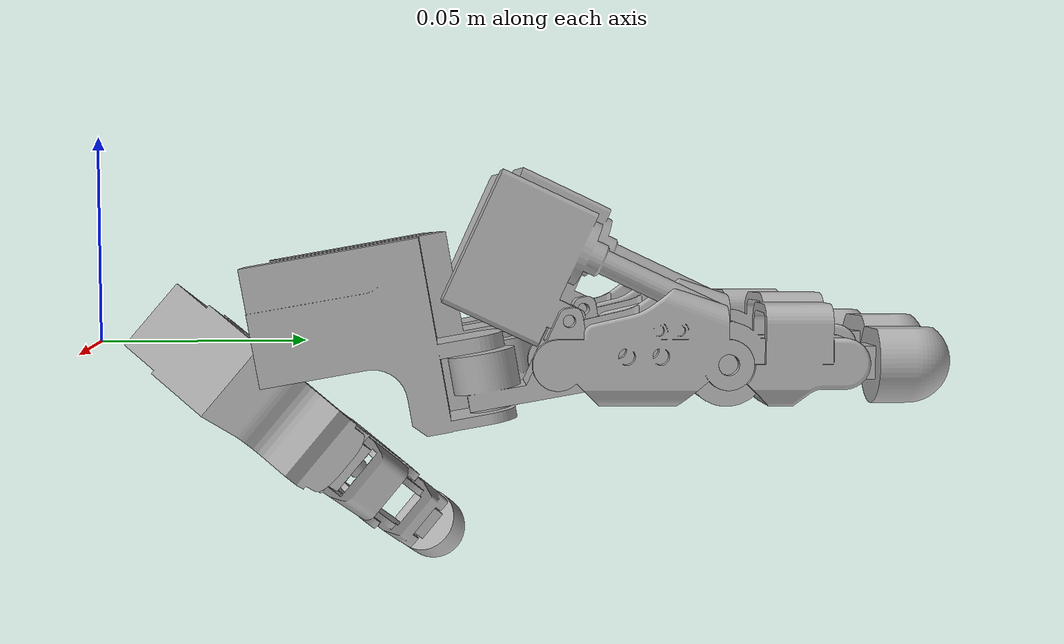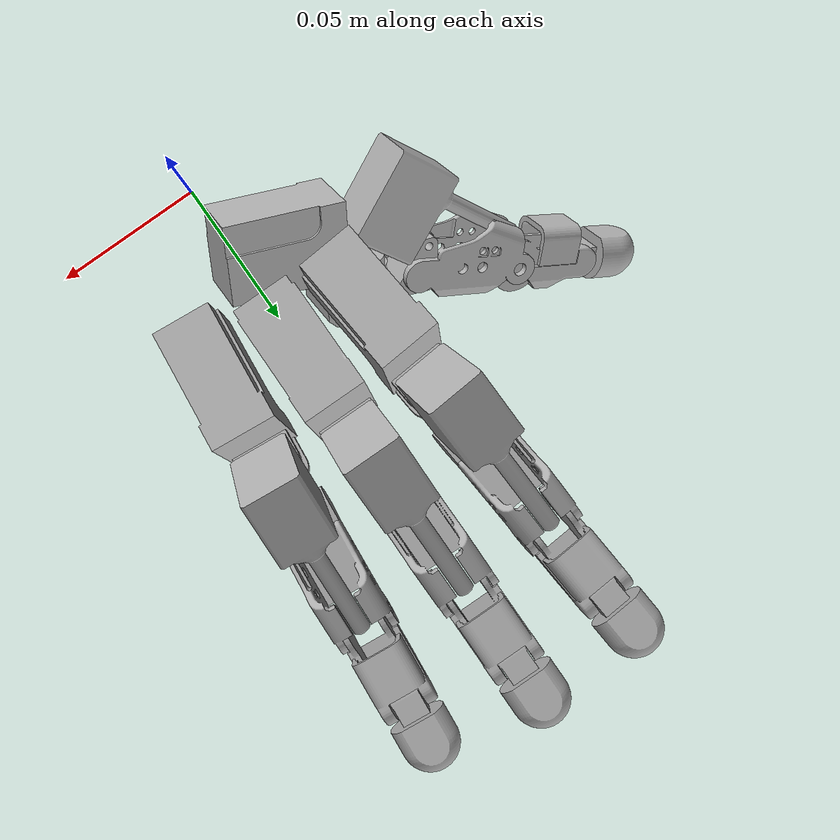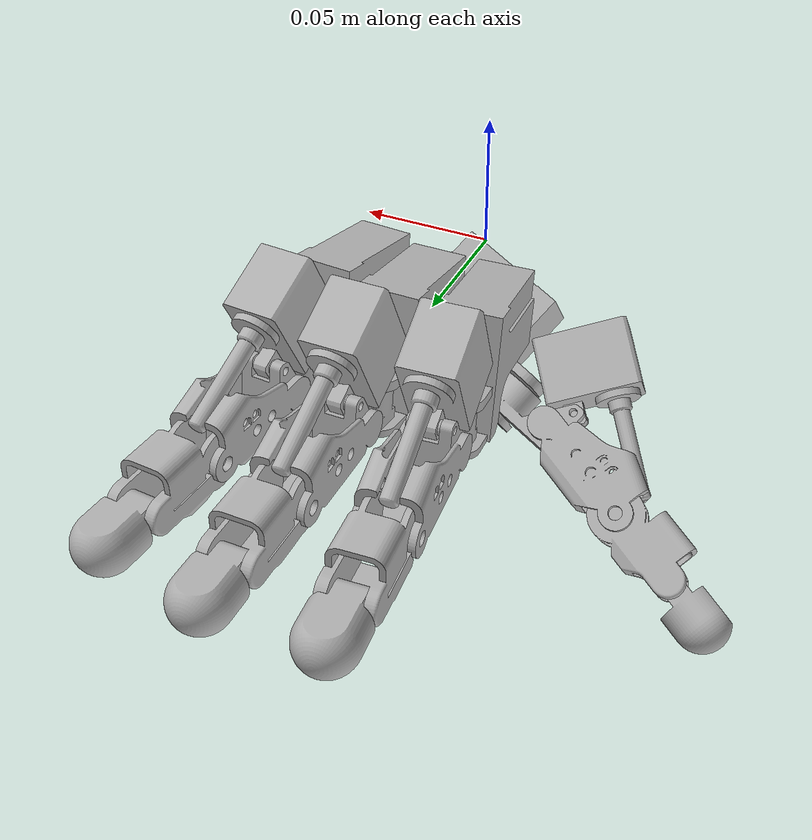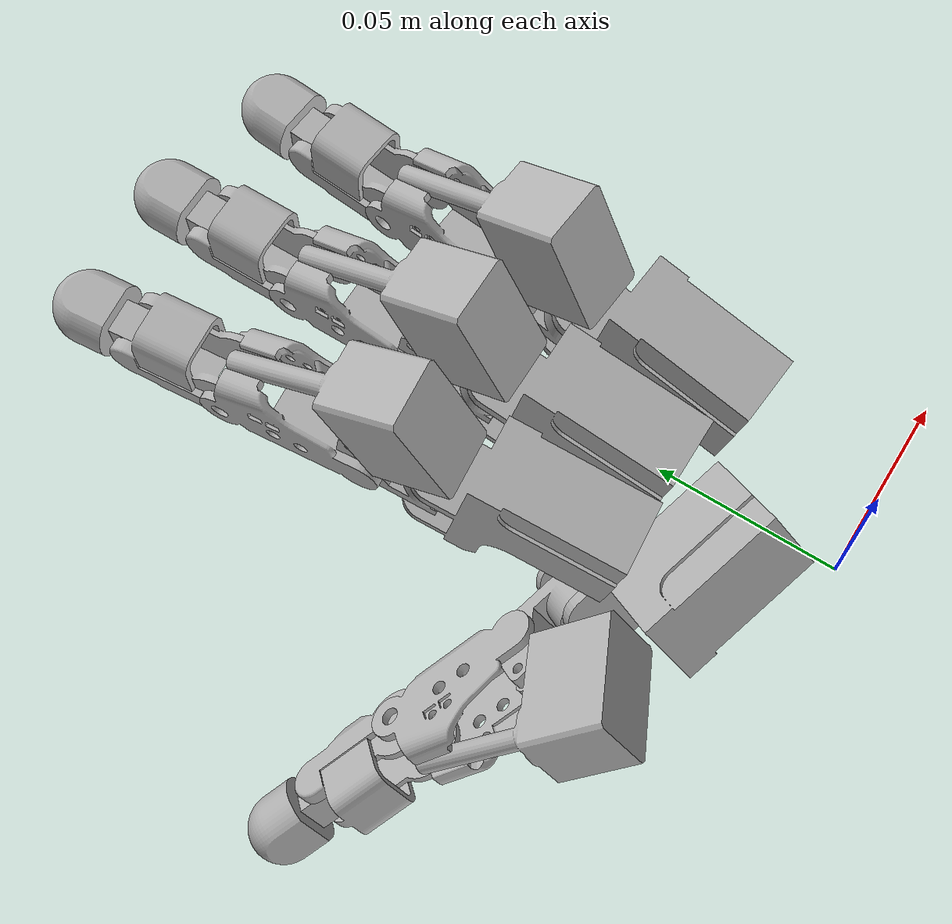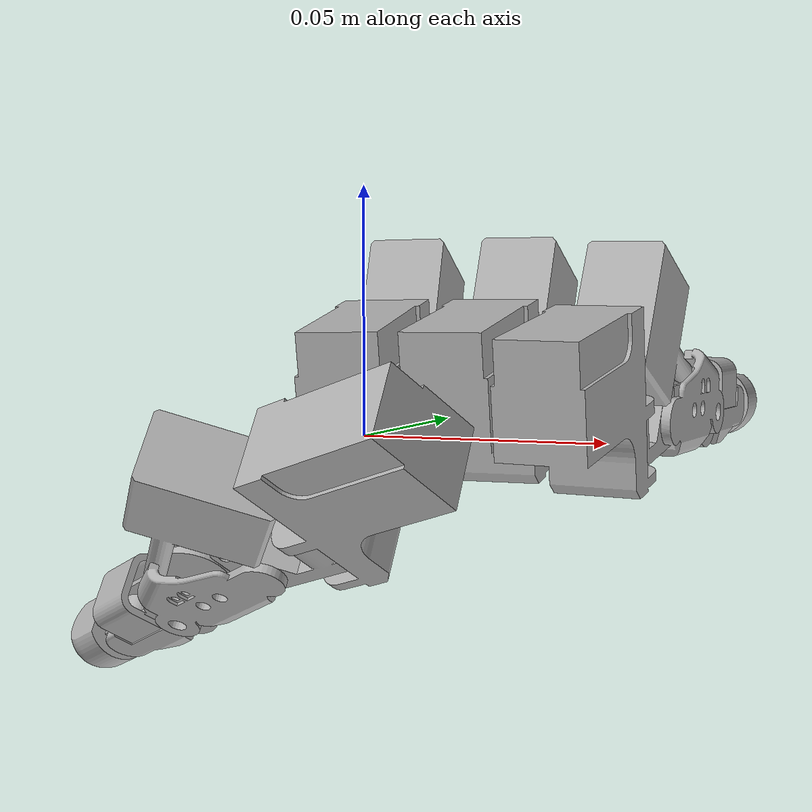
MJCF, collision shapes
<mujoco model="hand_urdf">
    <include file="simulation_scene.xml"/>

	<default class="position">
			<position ctrllimited="true" forcelimited="false" forcerange="-0.01 0.01" ctrlrange="-3 3" kp="1.0"></position>
    </default>
    <asset>
        <mesh name="base_link" file="base_link.stl" scale="0.001 0.001 0.001" />
        <mesh name="mcp2_1" file="mcp2_1.stl" scale="0.001 0.001 0.001" />
        <mesh name="pp2_1" file="pp2_1.stl" scale="0.001 0.001 0.001" />
        <mesh name="mp2_1" file="mp2_1.stl" scale="0.001 0.001 0.001" />
        <mesh name="dp2_1" file="dp2_1.stl" scale="0.001 0.001 0.001" />
        <mesh name="meta2_1" file="meta2_1.stl" scale="0.001 0.001 0.001" />
        <mesh name="meta1_1" file="meta1_1.stl" scale="0.001 0.001 0.001" />
        <mesh name="mcp1_1" file="mcp1_1.stl" scale="0.001 0.001 0.001" />
        <mesh name="pp1_1" file="pp1_1.stl" scale="0.001 0.001 0.001" />
        <mesh name="mp1_1" file="mp1_1.stl" scale="0.001 0.001 0.001" />
        <mesh name="dp1_1" file="dp1_1.stl" scale="0.001 0.001 0.001" />
        <mesh name="meta3_1" file="meta3_1.stl" scale="0.001 0.001 0.001" />
        <mesh name="mcp3_1" file="mcp3_1.stl" scale="0.001 0.001 0.001" />
        <mesh name="pp3_1" file="pp3_1.stl" scale="0.001 0.001 0.001" />
        <mesh name="mp3_1" file="mp3_1.stl" scale="0.001 0.001 0.001" />
        <mesh name="dp3_1" file="dp3_1.stl" scale="0.001 0.001 0.001" />
        <mesh name="meta4_1" file="meta4_1.stl" scale="0.001 0.001 0.001" />
        <mesh name="mcp4_1" file="mcp4_1.stl" scale="0.001 0.001 0.001" />
        <mesh name="pp4_1" file="pp4_1.stl" scale="0.001 0.001 0.001" />
        <mesh name="mp4_1" file="mp4_1.stl" scale="0.001 0.001 0.001" />
        <mesh name="dp4_1" file="dp4_1.stl" scale="0.001 0.001 0.001" />
        <mesh name="act1_1" file="act1_1.stl" scale="0.001 0.001 0.001" />
        <mesh name="act2_1" file="act2_1.stl" scale="0.001 0.001 0.001" />
        <mesh name="act3_1" file="act3_1.stl" scale="0.001 0.001 0.001" />
        <mesh name="act4_1" file="act4_1.stl" scale="0.001 0.001 0.001" />

         <!--texture type="skybox" builtin="gradient" width="128" height="128" rgb1="1 1 1" rgb2="0 0 0"/-->
        <texture type="skybox" builtin="gradient" width="128" height="128" rgb1="0.4 0.6 0.8" rgb2="0 0 0"/>
        <texture name="texgeom" type="cube" builtin="flat" mark="cross" width="128" height="128" rgb1="0.6 0.6 0.6" rgb2="0.6 0.6 0.6" markrgb="1 1 1"/>
        <texture name="texplane" type="2d" builtin="checker" rgb1=".4 .4 .4" rgb2=".6 .6 .6" width="512" height="512"/>
        <material name='geom' texture="texgeom" texuniform="true"/>
        <material name='MatPlane' reflectance='0.3' texture="texplane" texrepeat="1 1" texuniform="true"/>
        <material name='MatPlane2' reflectance='0.3' />

    </asset>
    <worldbody>
        <light directional="true" diffuse=".8 .8 .8" pos="0 0 10" dir="0 0 -10"/>
        <light directional="true" diffuse=".5 .5 .5" pos="10 0 0" dir="-10 0 0"/>

        <body name="virtual_link" pos="0 0 -1">
            <inertial pos="0.07809 0 0.03985" mass="0.19525" fullinertia="0.101833182 0.072400662 0.144478157 -0.000070812 -0.003831096 0.000079272" />
            <joint name="virtual_joint" type="free"/>
        </body>

        <geom type="mesh" rgba="0.7 0.7 0.7 1" mesh="base_link" contype="0" conaffinity="0"/>
        <geom type="mesh" rgba="0.7 0.7 0.7 1" mesh="meta2_1" contype="1" conaffinity="1"/>
        <geom type="mesh" rgba="0.7 0.7 0.7 1" mesh="meta1_1" contype="1" conaffinity="1"/>
        <geom type="mesh" rgba="0.7 0.7 0.7 1" mesh="meta3_1" contype="1" conaffinity="1"/>
        <geom type="mesh" rgba="0.7 0.7 0.7 1" mesh="meta4_1" contype="1" conaffinity="1"/>
        <body name="base_link">
            <inertial pos="0.00012921570168839317 0.017296271435922838 0.004513375763540404" mass="0.038866249408726565" diaginertia="1.6e-05 2.3e-05 2.4e-05"/>
            <body name="mcp2_1" pos="-0.029022 0.100047 -0.013279">
                <inertial pos="-0.00085722 0.00842528 0.00865166" quat="0.707107 0.707107 0 0" mass="0.0150899" diaginertia="2e-06 2e-06 1e-06" />
                <joint name="aa2" pos="0 0 0" axis="0 -0.173648 0.984808" limited="true" range="-3.14 3.14" class="ksy_joint"/>
                <geom pos="0.029022 -0.100047 0.013279" type="mesh" rgba="0.7 0.7 0.7 1" mesh="mcp2_1" contype="2" conaffinity="2"/>
                <body name="pp2_1" pos="-0.008953 0.01468 0.010509">
                    <inertial pos="0.00558963 0.0222004 0.00172825" quat="0.707107 0.707107 0 0" mass="0.0125687" diaginertia="3e-06 3e-06 2e-06" />
                    <joint name="mcp2" pos="0 0 0" axis="-0.996195 -0.085832 -0.015134" limited="true" range="-3.14 3.14" class="ksy_joint" />
                    <geom pos="0.037975 -0.114727 0.00277" type="mesh" rgba="0.7 0.7 0.7 1" mesh="pp2_1"/>
                    <body name="mp2_1" pos="-0.003931 0.039809 -3.3e-05">
                        <inertial pos="0.00676453 0.0144678 0.00126187" quat="0.707107 0.707107 0 0" mass="0.0129842" diaginertia="2e-06 2e-06 1e-06" />
                        <joint name="pip2" pos="0 0 0" axis="-0.996195 -0.085832 -0.015134"  limited="true" range="-3.14 3.14" class="ksy_joint"/>
                        <geom pos="0.041906 -0.154536 0.002803" type="mesh" rgba="0.7 0.7 0.7 1" mesh="mp2_1" />
                        <body name="dp2_1" pos="8.7e-05 0.028112 1.9e-05">
                            <inertial pos="0.00429285 0.0142959 -0.000246767" mass="0.0151738" diaginertia="1e-06 1e-06 1e-06" />
                            <joint name="dip2" pos="0 0 0" axis="-0.996195 -0.085832 -0.015134" limited="true" range="-3.14 3.14" class="ksy_joint"/>
                            <geom pos="0.041819 -0.182648 0.002784" type="mesh" rgba="0.7 0.7 0.7 1" mesh="dp2_1" />
                        </body>
                    </body>
                </body>
                <body name="act2_1" pos="0.001613 0.018389 0.02081">
                    <inertial pos="-0.00292034 -0.00937475 0.0141296" quat="0.707107 0.707107 0 0" mass="0.050027" diaginertia="1e-05 8e-06 6e-06" />
                    <joint name="act2" pos="0 0 0" axis="-0.996195 -0.085832 -0.015134" limited="true" range="-3.14 3.14" class="ksy_joint" />
                    <geom pos="0.027409 -0.118436 -0.007531" type="mesh" rgba="0.7 0.7 0.7 1" mesh="act2_1" contype="4" conaffinity="4" />
                </body>
            </body>
            <body name="mcp1_1" pos="-0.029913 0.05726 -0.033338">
                <inertial pos="-0.0118924 -0.00197871 0.00110107" quat="0.5 0.5 0.5 0.5" mass="0.0150899" diaginertia="2e-06 2e-06 1e-06" />
                <joint name="aa1" pos="0 0 0" axis="-0.42367 -0.700574 0.574195" limited="true" range="-3.14 3.14" class="ksy_joint"/>
                <geom pos="0.029913 -0.05726 0.033338" type="mesh" rgba="0.7 0.7 0.7 1" mesh="mcp1_1" contype="2" conaffinity="2"/>
                <body name="pp1_1" pos="-0.018968 0.004511 0.005092">
                    <inertial pos="-0.0183518 0.00316656 -0.0134266" quat="0.5 0.5 0.5 0.5" mass="0.0125687" diaginertia="3e-06 3e-06 2e-06" />
                    <joint name="mcp1" pos="0 0 0" axis="0.037066 -0.646775 -0.76178" limited="true" range="-3.14 3.14" class="ksy_joint"/>
                    <geom pos="0.048881 -0.061771 0.028246" type="mesh" rgba="0.7 0.7 0.7 1" mesh="pp1_1"/>
                    <body name="mp1_1" pos="-0.032135 0.006716 -0.027613">
                        <inertial pos="-0.012269 0.0102303 0.00121932" quat="0.5 0.5 0.5 0.5" mass="0.0129842" diaginertia="2e-06 2e-06 1e-06" />
                        <joint name="pip1" pos="0 0 0" axis="0.037066 -0.646775 -0.76178" limited="true" range="-3.14 3.14" class="ksy_joint"/>
                        <geom pos="0.081016 -0.068487 0.055859" type="mesh" rgba="0.7 0.7 0.7 1" mesh="mp1_1" />
                        <body name="dp1_1" pos="-0.023397 0.020451 -0.00078">
                            <inertial pos="-0.0109583 0.00245434 -0.00983685" mass="0.0151738" diaginertia="1e-06 1e-06 1e-06" />
                            <joint name="dip1" pos="0 0 0" axis="0.037066 -0.646775 -0.76178" limited="true" range="-3.14 3.14" class="ksy_joint"/>
                            <geom pos="0.104413 -0.088938 0.056639" type="mesh" rgba="0.7 0.7 0.7 1" mesh="dp1_1" />
                        </body>
                    </body>
                </body>
                <body name="act1_1" pos="-0.026658 -0.007903 0.000818">
                    <inertial pos="-0.000833478 -0.010584 0.0135401" quat="0.433758 0.539223 -0.0208348 0.721567" mass="0.050027" diaginertia="1.05688e-05 7.63555e-06 4.7956e-06" />
                    <joint name="act1" pos="0 0 0" axis="0.037066 -0.646775 -0.76178" limited="true" range="-3.14 3.14" class="ksy_joint" />
                    <geom pos="0.056571 -0.049357 0.03252" type="mesh" rgba="0.7 0.7 0.7 1" mesh="act1_1" contype="4" conaffinity="4" />
                </body>
            </body>
            <body name="mcp3_1" pos="0.00045 0.101099 -0.013093">
                <inertial pos="3.79376e-07 0.00846239 0.0086577" quat="0.707107 0.707107 0 0" mass="0.0150899" diaginertia="2e-06 2e-06 1e-06" />
                <joint name="aa3" pos="0 0 0" axis="0 -0.173648 0.984808" limited="true" range="-3.14 3.14" class="ksy_joint"/>
                <geom pos="-0.00045 -0.101099 0.013093" type="mesh" rgba="0.7 0.7 0.7 1" mesh="mcp3_1" contype="2" conaffinity="2" />
                <body name="pp3_1" pos="0.0075 0.015388 0.010633">
                    <inertial pos="-0.00749962 0.0216372 0.00162929" quat="0.707107 0.707107 0 0" mass="0.0125687" diaginertia="3e-06 3e-06 2e-06" />
                    <joint name="mcp3" pos="0 0 0" axis="-1 0 0" limited="true" range="-3.14 3.14" class="ksy_joint"/>
                    <geom pos="-0.00795 -0.116487 0.00246" type="mesh" rgba="0.7 0.7 0.7 1" mesh="pp3_1"/>
                    <body name="mp3_1" pos="-0.0155 0.04 0">
                        <inertial pos="0.00800038 0.0138322 0.00115081" quat="0.707107 0.707107 0 0" mass="0.0129842" diaginertia="2e-06 2e-06 1e-06" />
                        <joint name="pip3" pos="0 0 0" axis="-1 0 0" limited="true" range="-3.14 3.14" class="ksy_joint"/>
                        <geom pos="0.00755 -0.156487 0.00246" type="mesh" rgba="0.7 0.7 0.7 1" mesh="mp3_1" />
                        <body name="dp3_1" pos="0.0135 0.028 0">
                            <inertial pos="-0.00549962 0.0138749 -0.000320751" mass="0.0151738" diaginertia="1e-06 1e-06 1e-06" />
                            <joint name="dip3" pos="0 0 0" axis="-1 0 0" limited="true" range="-3.14 3.14" class="ksy_joint"/>
                            <geom pos="-0.00595 -0.184487 0.00246" type="mesh" rgba="0.7 0.7 0.7 1" mesh="dp3_1" />
                        </body>
                    </body>
                </body>
                <body name="act3_1" pos="0.0035 0.01817 0.020771">
                    <inertial pos="-0.00349962 -0.00909928 0.0141781" quat="0.707107 0.707107 0 0" mass="0.050027" diaginertia="1e-05 8e-06 6e-06" />
                    <joint name="act3" pos="0 0 0" axis="-1 0 0" limited="true" range="-3.14 3.14" class="ksy_joint" />
                    <geom pos="-0.00395 -0.119269 -0.007678" type="mesh" rgba="0.7 0.7 0.7 1" mesh="act3_1" contype="4" conaffinity="4" />
                </body>
            </body>
            <body name="mcp4_1" pos="0.029803 0.092965 -0.014527">
                <inertial pos="0.000857375 0.00842528 0.00865091" quat="0.707107 0.707107 0 0" mass="0.0150899" diaginertia="2e-06 2e-06 1e-06" />
                <joint name="aa4" pos="0 0 0" axis="0 -0.173648 0.984808" limited="true" range="-3.14 3.14" class="ksy_joint"/>
                <geom pos="-0.029803 -0.092965 0.014527" type="mesh" rgba="0.7 0.7 0.7 1" mesh="mcp4_1" contype="2" conaffinity="2"/>
                <body name="pp4_1" pos="0.008953 0.01468 0.010508">
                    <inertial pos="-0.00558948 0.0222003 0.00172851" quat="0.707107 0.707107 0 0" mass="0.0125687" diaginertia="3e-06 3e-06 2e-06" />
                    <joint name="mcp4" pos="0 0 0" axis="-0.996195 0.085832 0.015134" limited="true" range="-3.14 3.14" class="ksy_joint"/>
                    <geom pos="-0.038756 -0.107645 0.004019" type="mesh" rgba="0.7 0.7 0.7 1" mesh="pp4_1" />
                    <body name="mp4_1" pos="-0.012008 0.041183 0.000209">
                        <inertial pos="0.00917463 0.0130938 0.00102012" quat="0.707107 0.707107 0 0" mass="0.0129842" diaginertia="2e-06 2e-06 1e-06" />
                        <joint name="pip4" pos="0 0 0" axis="-1 0 0" limited="true" range="-3.14 3.14" class="ksy_joint"/>
                        <geom pos="-0.026748 -0.148828 0.00381" type="mesh" rgba="0.7 0.7 0.7 1" mesh="mp4_1" />
                        <body name="dp4_1" pos="0.015852 0.026738 -0.000223">
                            <inertial pos="-0.00429269 0.0142959 -0.000246515" mass="0.0151738" diaginertia="1e-06 1e-06 1e-06" />
                            <joint name="dip4" pos="0 0 0" axis="-0.996195 0.085832 0.015134" limited="true" range="-3.14 3.14" class="ksy_joint"/>
                            <geom pos="-0.0426 -0.175566 0.004033" type="mesh" rgba="0.7 0.7 0.7 1" mesh="dp4_1" />
                        </body>
                    </body>
                </body>
                <body name="act4_1" pos="0.005361 0.017788 0.020703">
                    <inertial pos="-0.00405351 -0.00877375 0.0142359" quat="0.707107 0.707107 0 0" mass="0.050027" diaginertia="1e-05 8e-06 6e-06" />
                    <joint name="act4" pos="0 0 0" axis="-0.996195 0.085832 0.015134" limited="true" range="-3.14 3.14" class="ksy_joint" />
                    <geom pos="-0.035164 -0.110753 -0.006176" type="mesh" rgba="0.7 0.7 0.7 1" mesh="act4_1" contype="4" conaffinity="4" />
                </body>
            </body>
        </body>
    </worldbody>
    <actuator>

        <position name="aa2_Motor"  joint="aa2"  class="position"/>
        <position name="mcp2_Motor" joint="mcp2" class="position"/>
        <position name="pip2_Motor" joint="pip2" class="position"/>
        <position name="dip2_Motor" joint="dip2" class="position"/>
        <position name="aa1_Motor"  joint="aa1"  class="position"/>
        <position name="mcp1_Motor" joint="mcp1" class="position"/>
        <position name="pip1_Motor" joint="pip1" class="position"/>
        <position name="dip1_Motor" joint="dip1" class="position"/>
        <position name="aa3_Motor"  joint="aa3"  class="position"/>
        <position name="mcp3_Motor" joint="mcp3" class="position"/>
        <position name="pip3_Motor" joint="pip3" class="position"/>
        <position name="dip3_Motor" joint="dip3" class="position"/>
        <position name="aa4_Motor"  joint="aa4"  class="position"/>
        <position name="mcp4_Motor" joint="mcp4" class="position"/>
        <position name="pip4_Motor" joint="pip4" class="position"/>
        <position name="dip4_Motor" joint="dip4" class="position"/>
        <position name="act2_Motor" joint="act2" class="position"/>
        <position name="act1_Motor" joint="act1" class="position"/>
        <position name="act3_Motor" joint="act3" class="position"/>
        <position name="act4_Motor" joint="act4" class="position"/>
    </actuator>
</mujoco>

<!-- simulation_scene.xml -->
<mujoco model="scene">
    <option timestep='0.01' iterations="50" tolerance="1e-5" solver="Newton" jacobian="dense" cone="elliptic" noslip_iterations="30" noslip_tolerance="1e-5"/>
    <size njmax="8000" nconmax="4000"/>
    <compiler angle="radian" meshdir="../meshes/" balanceinertia="true"/>
    <default>
        <motor ctrllimited="true"/>
        <default class="viz">
            <geom contype="0" conaffinity="0" group="1" type="mesh" rgba=".6 .6 .7 1" />
        </default>
        <default class="cls">
            <geom group="2" rgba="0.79216 0.81961 0.93333 0.5"/>
        </default>
        <default class="cls_f">
            <geom group="2" rgba="0.79216 0.81961 0.93333 0.1" friction="1 0.005 0.0001"/>
        </default>
        <default class="FTsensor">
            <site type="cylinder" size="0.005 0.005" group="4" rgba=".1 .1 .9 1"/>
        </default>
        <default class="shg20_100_2so">
            <joint damping="0.0248" frictionloss="9.9"/>
        </default>  <!-- rated torque = 52 Nm -->

        <default class="shd20_100_2sh">
            <joint damping="0.0161"  frictionloss="22.0"/>
        </default>  <!-- rated torque = 28 Nm -->

        <default class="shg25_100_2so">
            <joint damping="0.0417"  frictionloss="14"/>
        </default>  <!-- rated torque = 87 Nm -->

        <default class="shg17_100_2so">
            <joint damping="0.0148"  frictionloss="6.5"/>
        </default>  <!-- rated torque = 31 Nm -->

        <default class="shg14_100_2so">
            <joint damping="0.0047"  frictionloss="3.7"/>
        </default>  <!-- rated torque = 10 Nm -->

        <default class="csf_11_100_2xh_f">
            <joint damping="0.0029" frictionloss="1.5"/>
        </default>  <!-- rated torque = 5 Nm -->

        <default class="ksy_joint">
            <joint damping="0.01" frictionloss="0.01"/>
        </default>  <!-- ksy hand -->
    </default>

    <visual>
        <quality shadowsize="2048" offsamples="16"/>
        <map stiffness="10" znear="0.05"/>
    </visual>
</mujoco>
